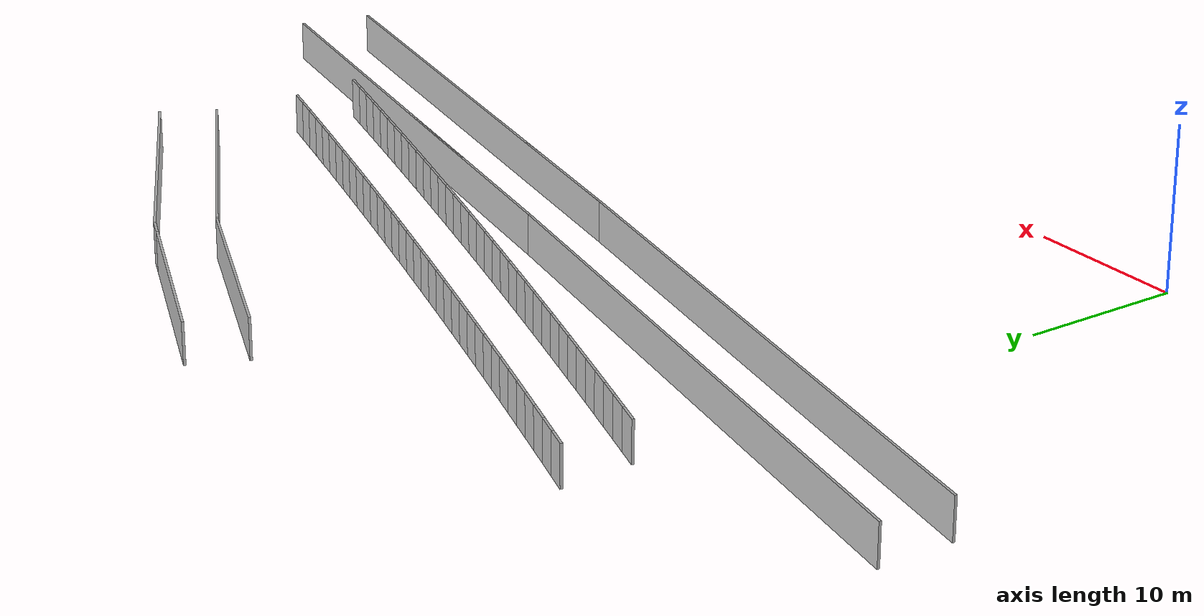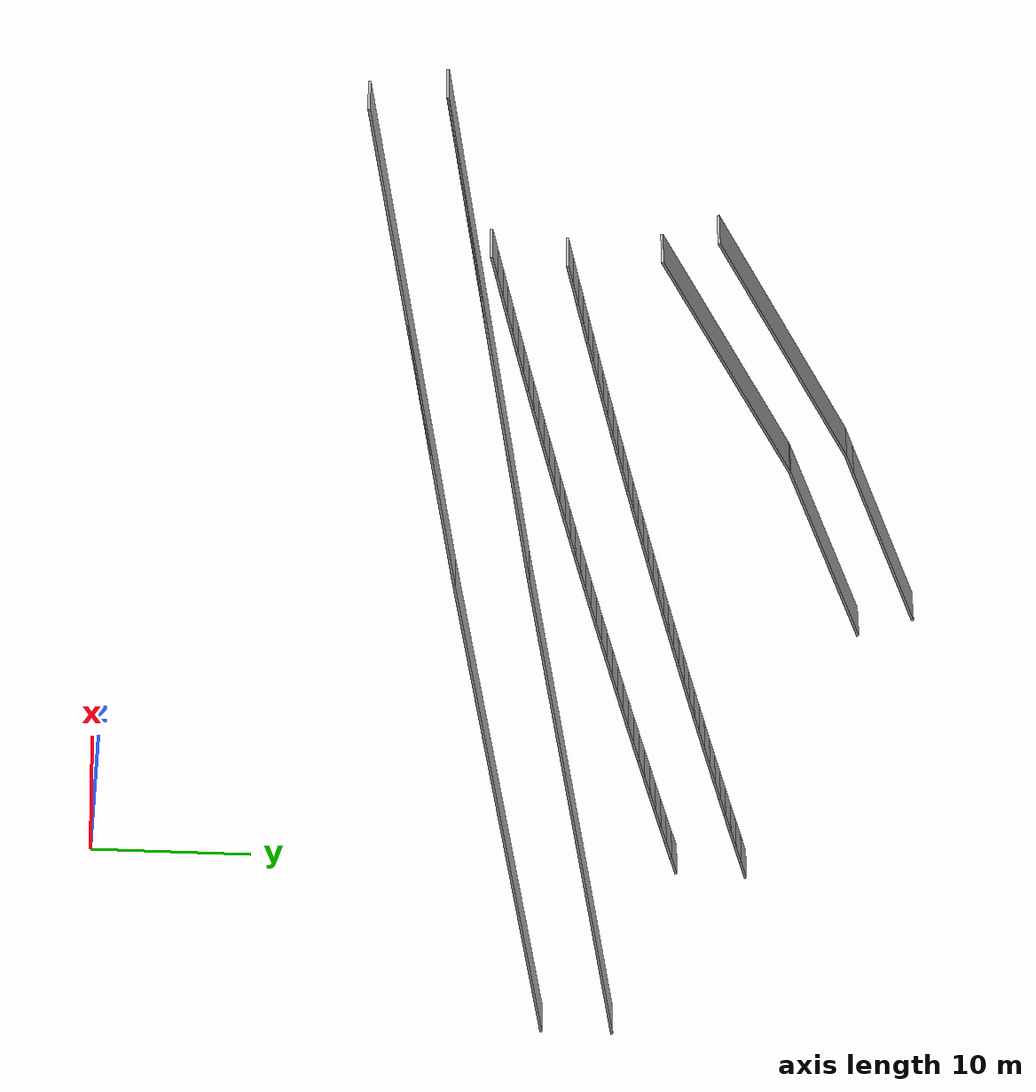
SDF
<?xml version="1.0" ?>
<sdf version="1.6">
  <model name="sps_1704">
    <pose frame="">0 0 0 0 -0 0</pose>
    <static>1</static>
    <self_collide>0</self_collide>
    <allow_auto_disable>0</allow_auto_disable>
    <link name="Wall115">
      <kinematic>0</kinematic>
      <gravity>1</gravity>
      <self_collide>0</self_collide>
      <collision name="collision">
        <geometry>
          <box>
            <size>18.2188 0.15 2.5</size>
          </box>
        </geometry>
        <pose frame="">0 0 0 0 -0 0</pose>
      </collision>
      <visual name="visual">
        <geometry>
          <box>
            <size>18.2188 0.15 2.5</size>
          </box>
        </geometry>
        <pose frame="">0 0 0 0 -0 0</pose>
        <cast_shadows>1</cast_shadows>
        <transparency>0.0</transparency>
      </visual>
      <pose frame="">43.8209 39.7331 1.25 0 0 -0.498938</pose>
    </link>
    <link name="Wall116">
      <kinematic>0</kinematic>
      <gravity>1</gravity>
      <self_collide>0</self_collide>
      <collision name="collision">
        <geometry>
          <box>
            <size>10.5897 0.15 2.5</size>
          </box>
        </geometry>
        <pose frame="">0 0 0 0 -0 0</pose>
      </collision>
      <visual name="visual">
        <geometry>
          <box>
            <size>10.5897 0.15 2.5</size>
          </box>
        </geometry>
        <pose frame="">0 0 0 0 -0 0</pose>
        <cast_shadows>1</cast_shadows>
        <transparency>0.0</transparency>
      </visual>
      <pose frame="">29.2566 20.6364 1.25 0 0 -0.176184</pose>
    </link>
    <link name="Wall117">
      <kinematic>0</kinematic>
      <gravity>1</gravity>
      <self_collide>0</self_collide>
      <collision name="collision">
        <geometry>
          <box>
            <size>10.3568 0.15 2.5</size>
          </box>
        </geometry>
        <pose frame="">0 0 0 0 -0 0</pose>
      </collision>
      <visual name="visual">
        <geometry>
          <box>
            <size>10.3568 0.15 2.5</size>
          </box>
        </geometry>
        <pose frame="">0 0 0 0 -0 0</pose>
        <cast_shadows>1</cast_shadows>
        <transparency>0.0</transparency>
      </visual>
      <pose frame="">39.5677 18.8007 1.25 0 0 -0.176184</pose>
    </link>
    <link name="Wall195">
      <kinematic>0</kinematic>
      <gravity>1</gravity>
      <self_collide>0</self_collide>
      <collision name="collision">
        <geometry>
          <box>
            <size>14.2591 0.15 2.5</size>
          </box>
        </geometry>
        <pose frame="">0 0 0 0 -0 0</pose>
      </collision>
      <visual name="visual">
        <geometry>
          <box>
            <size>14.2591 0.15 2.5</size>
          </box>
        </geometry>
        <pose frame="">0 0 0 0 -0 0</pose>
        <cast_shadows>1</cast_shadows>
        <transparency>0.0</transparency>
      </visual>
      <pose frame="">27.7093 43.5599 1.25 0 -0 2.76212</pose>
    </link>
    <link name="Wall283">
      <kinematic>0</kinematic>
      <gravity>1</gravity>
      <self_collide>0</self_collide>
      <collision name="collision">
        <geometry>
          <box>
            <size>41.0751 0.15 2.5</size>
          </box>
        </geometry>
        <pose frame="">0 0 0 0 -0 0</pose>
      </collision>
      <visual name="visual">
        <geometry>
          <box>
            <size>41.0751 0.15 2.5</size>
          </box>
        </geometry>
        <pose frame="">0 0 0 0 -0 0</pose>
        <cast_shadows>1</cast_shadows>
        <transparency>0.0</transparency>
      </visual>
      <pose frame="">4.64434 29.8393 1.25 0 -0 2.95339</pose>
    </link>
    <link name="Wall285">
      <kinematic>0</kinematic>
      <gravity>1</gravity>
      <self_collide>0</self_collide>
      <collision name="collision">
        <geometry>
          <box>
            <size>9.80231 0.15 2.5</size>
          </box>
        </geometry>
        <pose frame="">0 0 0 0 -0 0</pose>
      </collision>
      <visual name="visual">
        <geometry>
          <box>
            <size>9.80231 0.15 2.5</size>
          </box>
        </geometry>
        <pose frame="">0 0 0 0 -0 0</pose>
        <cast_shadows>1</cast_shadows>
        <transparency>0.0</transparency>
      </visual>
      <pose frame="">29.6443 25.1368 1.25 0 0 -0.176394</pose>
    </link>
    <link name="Wall286">
      <kinematic>0</kinematic>
      <gravity>1</gravity>
      <self_collide>0</self_collide>
      <collision name="collision">
        <geometry>
          <box>
            <size>27.6822 0.15 2.5</size>
          </box>
        </geometry>
        <pose frame="">0 0 0 0 -0 0</pose>
      </collision>
      <visual name="visual">
        <geometry>
          <box>
            <size>27.6822 0.15 2.5</size>
          </box>
        </geometry>
        <pose frame="">0 0 0 0 -0 0</pose>
        <cast_shadows>1</cast_shadows>
        <transparency>0.0</transparency>
      </visual>
      <pose frame="">48.0958 21.8479 1.25 0 0 -0.176394</pose>
    </link>
    <link name="Wall352">
      <kinematic>0</kinematic>
      <gravity>1</gravity>
      <self_collide>0</self_collide>
      <collision name="collision">
        <geometry>
          <box>
            <size>40.2857 0.15 2.5</size>
          </box>
        </geometry>
        <pose frame="">0 0 0 0 -0 0</pose>
      </collision>
      <visual name="visual">
        <geometry>
          <box>
            <size>40.2857 0.15 2.5</size>
          </box>
        </geometry>
        <pose frame="">0 0 0 0 -0 0</pose>
        <cast_shadows>1</cast_shadows>
        <transparency>0.0</transparency>
      </visual>
      <pose frame="">4.25655 25.3333 1.25 0 -0 2.95338</pose>
    </link>
    <link name="Wall433">
      <kinematic>0</kinematic>
      <gravity>1</gravity>
      <self_collide>0</self_collide>
      <collision name="collision">
        <geometry>
          <box>
            <size>12.8028 0.15 2.5</size>
          </box>
        </geometry>
        <pose frame="">0 0 0 0 -0 0</pose>
      </collision>
      <visual name="visual">
        <geometry>
          <box>
            <size>12.8028 0.15 2.5</size>
          </box>
        </geometry>
        <pose frame="">0 0 0 0 -0 0</pose>
        <cast_shadows>1</cast_shadows>
        <transparency>0.0</transparency>
      </visual>
      <pose frame="">28.5235 47.0026 1.25 0 0 -0.379479</pose>
    </link>
    <link name="Wall434">
      <kinematic>0</kinematic>
      <gravity>1</gravity>
      <self_collide>0</self_collide>
      <collision name="collision">
        <geometry>
          <box>
            <size>1.4562 0.15 2.5</size>
          </box>
        </geometry>
        <pose frame="">0 0 0 0 -0 0</pose>
      </collision>
      <visual name="visual">
        <geometry>
          <box>
            <size>1.4562 0.15 2.5</size>
          </box>
        </geometry>
        <pose frame="">0 0 0 0 -0 0</pose>
        <cast_shadows>1</cast_shadows>
        <transparency>0.0</transparency>
      </visual>
      <pose frame="">35.1457 44.3616 1.25 0 0 -0.379479</pose>
    </link>
    <link name="Wall612">
      <kinematic>0</kinematic>
      <gravity>1</gravity>
      <self_collide>0</self_collide>
      <collision name="collision">
        <geometry>
          <box>
            <size>17.9531 0.15 2.5</size>
          </box>
        </geometry>
        <pose frame="">0 0 0 0 -0 0</pose>
      </collision>
      <visual name="visual">
        <geometry>
          <box>
            <size>17.9531 0.15 2.5</size>
          </box>
        </geometry>
        <pose frame="">0 0 0 0 -0 0</pose>
        <cast_shadows>1</cast_shadows>
        <transparency>0.0</transparency>
      </visual>
      <pose frame="">42.3516 36.5486 1.25 0 -0 2.64265</pose>
    </link>
    <link name="Wall613">
      <kinematic>0</kinematic>
      <gravity>1</gravity>
      <self_collide>0</self_collide>
      <collision name="collision">
        <geometry>
          <box>
            <size>0.156951 0.15 2.5</size>
          </box>
        </geometry>
        <pose frame="">0 0 0 0 -0 0</pose>
      </collision>
      <visual name="visual">
        <geometry>
          <box>
            <size>0.156951 0.15 2.5</size>
          </box>
        </geometry>
        <pose frame="">0 0 0 0 -0 0</pose>
        <cast_shadows>1</cast_shadows>
        <transparency>0.0</transparency>
      </visual>
      <pose frame="">34.4005 40.8813 1.25 0 -0 2.64265</pose>
    </link>
    <link name="Wall988">
      <kinematic>0</kinematic>
      <gravity>1</gravity>
      <self_collide>0</self_collide>
      <collision name="collision">
        <geometry>
          <box>
            <size>37.2045 0.15 2.5</size>
          </box>
        </geometry>
        <pose frame="">0 0 0 0 -0 0</pose>
      </collision>
      <visual name="visual">
        <geometry>
          <box>
            <size>37.2045 0.15 2.5</size>
          </box>
        </geometry>
        <pose frame="">0 0 0 0 -0 0</pose>
        <cast_shadows>1</cast_shadows>
        <transparency>0.0</transparency>
      </visual>
      <pose frame="">42.358 18.304 1.25 0 -0 2.96541</pose>
    </link>
    <link name="Wall998">
      <kinematic>0</kinematic>
      <gravity>1</gravity>
      <self_collide>0</self_collide>
      <collision name="collision">
        <geometry>
          <box>
            <size>37.4845 0.15 2.5</size>
          </box>
        </geometry>
        <pose frame="">0 0 0 0 -0 0</pose>
      </collision>
      <visual name="visual">
        <geometry>
          <box>
            <size>37.4845 0.15 2.5</size>
          </box>
        </geometry>
        <pose frame="">0 0 0 0 -0 0</pose>
        <cast_shadows>1</cast_shadows>
        <transparency>0.0</transparency>
      </visual>
      <pose frame="">43.2707 22.708 1.25 0 0 -0.176394</pose>
    </link>
    <link name="Wall8818">
      <kinematic>0</kinematic>
      <gravity>1</gravity>
      <self_collide>0</self_collide>
      <collision name="collision">
        <geometry>
          <box>
            <size>1.49898 0.15 2.5</size>
          </box>
        </geometry>
        <pose frame="">0 0 0 0 -0 0</pose>
      </collision>
      <visual name="visual">
        <geometry>
          <box>
            <size>1.49898 0.15 2.5</size>
          </box>
        </geometry>
        <pose frame="">0 0 0 0 -0 0</pose>
        <cast_shadows>1</cast_shadows>
        <transparency>0.0</transparency>
      </visual>
      <pose frame="">0.359367 36.5145 1.25 0 0 -0.302397</pose>
    </link>
    <link name="Wall8819">
      <kinematic>0</kinematic>
      <gravity>1</gravity>
      <self_collide>0</self_collide>
      <collision name="collision">
        <geometry>
          <box>
            <size>1.49897 0.15 2.5</size>
          </box>
        </geometry>
        <pose frame="">0 0 0 0 -0 0</pose>
      </collision>
      <visual name="visual">
        <geometry>
          <box>
            <size>1.49897 0.15 2.5</size>
          </box>
        </geometry>
        <pose frame="">0 0 0 0 -0 0</pose>
        <cast_shadows>1</cast_shadows>
        <transparency>0.0</transparency>
      </visual>
      <pose frame="">1.79064 36.0691 1.25 0 0 -0.300993</pose>
    </link>
    <link name="Wall8820">
      <kinematic>0</kinematic>
      <gravity>1</gravity>
      <self_collide>0</self_collide>
      <collision name="collision">
        <geometry>
          <box>
            <size>1.49889 0.15 2.5</size>
          </box>
        </geometry>
        <pose frame="">0 0 0 0 -0 0</pose>
      </collision>
      <visual name="visual">
        <geometry>
          <box>
            <size>1.49889 0.15 2.5</size>
          </box>
        </geometry>
        <pose frame="">0 0 0 0 -0 0</pose>
        <cast_shadows>1</cast_shadows>
        <transparency>0.0</transparency>
      </visual>
      <pose frame="">3.22256 35.6259 1.25 0 0 -0.299304</pose>
    </link>
    <link name="Wall8821">
      <kinematic>0</kinematic>
      <gravity>1</gravity>
      <self_collide>0</self_collide>
      <collision name="collision">
        <geometry>
          <box>
            <size>1.49891 0.15 2.5</size>
          </box>
        </geometry>
        <pose frame="">0 0 0 0 -0 0</pose>
      </collision>
      <visual name="visual">
        <geometry>
          <box>
            <size>1.49891 0.15 2.5</size>
          </box>
        </geometry>
        <pose frame="">0 0 0 0 -0 0</pose>
        <cast_shadows>1</cast_shadows>
        <transparency>0.0</transparency>
      </visual>
      <pose frame="">4.65517 35.1851 1.25 0 0 -0.297682</pose>
    </link>
    <link name="Wall8822">
      <kinematic>0</kinematic>
      <gravity>1</gravity>
      <self_collide>0</self_collide>
      <collision name="collision">
        <geometry>
          <box>
            <size>1.49883 0.15 2.5</size>
          </box>
        </geometry>
        <pose frame="">0 0 0 0 -0 0</pose>
      </collision>
      <visual name="visual">
        <geometry>
          <box>
            <size>1.49883 0.15 2.5</size>
          </box>
        </geometry>
        <pose frame="">0 0 0 0 -0 0</pose>
        <cast_shadows>1</cast_shadows>
        <transparency>0.0</transparency>
      </visual>
      <pose frame="">6.08846 34.7466 1.25 0 0 -0.296122</pose>
    </link>
    <link name="Wall8823">
      <kinematic>0</kinematic>
      <gravity>1</gravity>
      <self_collide>0</self_collide>
      <collision name="collision">
        <geometry>
          <box>
            <size>1.49897 0.15 2.5</size>
          </box>
        </geometry>
        <pose frame="">0 0 0 0 -0 0</pose>
      </collision>
      <visual name="visual">
        <geometry>
          <box>
            <size>1.49897 0.15 2.5</size>
          </box>
        </geometry>
        <pose frame="">0 0 0 0 -0 0</pose>
        <cast_shadows>1</cast_shadows>
        <transparency>0.0</transparency>
      </visual>
      <pose frame="">7.52245 34.3103 1.25 0 0 -0.294604</pose>
    </link>
    <link name="Wall8824">
      <kinematic>0</kinematic>
      <gravity>1</gravity>
      <self_collide>0</self_collide>
      <collision name="collision">
        <geometry>
          <box>
            <size>1.49907 0.15 2.5</size>
          </box>
        </geometry>
        <pose frame="">0 0 0 0 -0 0</pose>
      </collision>
      <visual name="visual">
        <geometry>
          <box>
            <size>1.49907 0.15 2.5</size>
          </box>
        </geometry>
        <pose frame="">0 0 0 0 -0 0</pose>
        <cast_shadows>1</cast_shadows>
        <transparency>0.0</transparency>
      </visual>
      <pose frame="">8.95724 33.8762 1.25 0 0 -0.293009</pose>
    </link>
    <link name="Wall8825">
      <kinematic>0</kinematic>
      <gravity>1</gravity>
      <self_collide>0</self_collide>
      <collision name="collision">
        <geometry>
          <box>
            <size>1.4988 0.15 2.5</size>
          </box>
        </geometry>
        <pose frame="">0 0 0 0 -0 0</pose>
      </collision>
      <visual name="visual">
        <geometry>
          <box>
            <size>1.4988 0.15 2.5</size>
          </box>
        </geometry>
        <pose frame="">0 0 0 0 -0 0</pose>
        <cast_shadows>1</cast_shadows>
        <transparency>0.0</transparency>
      </visual>
      <pose frame="">10.3926 33.4444 1.25 0 0 -0.291406</pose>
    </link>
    <link name="Wall8826">
      <kinematic>0</kinematic>
      <gravity>1</gravity>
      <self_collide>0</self_collide>
      <collision name="collision">
        <geometry>
          <box>
            <size>1.49893 0.15 2.5</size>
          </box>
        </geometry>
        <pose frame="">0 0 0 0 -0 0</pose>
      </collision>
      <visual name="visual">
        <geometry>
          <box>
            <size>1.49893 0.15 2.5</size>
          </box>
        </geometry>
        <pose frame="">0 0 0 0 -0 0</pose>
        <cast_shadows>1</cast_shadows>
        <transparency>0.0</transparency>
      </visual>
      <pose frame="">11.8286 33.0149 1.25 0 0 -0.28985</pose>
    </link>
    <link name="Wall8827">
      <kinematic>0</kinematic>
      <gravity>1</gravity>
      <self_collide>0</self_collide>
      <collision name="collision">
        <geometry>
          <box>
            <size>1.49906 0.15 2.5</size>
          </box>
        </geometry>
        <pose frame="">0 0 0 0 -0 0</pose>
      </collision>
      <visual name="visual">
        <geometry>
          <box>
            <size>1.49906 0.15 2.5</size>
          </box>
        </geometry>
        <pose frame="">0 0 0 0 -0 0</pose>
        <cast_shadows>1</cast_shadows>
        <transparency>0.0</transparency>
      </visual>
      <pose frame="">13.2654 32.5876 1.25 0 0 -0.288294</pose>
    </link>
    <link name="Wall8828">
      <kinematic>0</kinematic>
      <gravity>1</gravity>
      <self_collide>0</self_collide>
      <collision name="collision">
        <geometry>
          <box>
            <size>1.4989 0.15 2.5</size>
          </box>
        </geometry>
        <pose frame="">0 0 0 0 -0 0</pose>
      </collision>
      <visual name="visual">
        <geometry>
          <box>
            <size>1.4989 0.15 2.5</size>
          </box>
        </geometry>
        <pose frame="">0 0 0 0 -0 0</pose>
        <cast_shadows>1</cast_shadows>
        <transparency>0.0</transparency>
      </visual>
      <pose frame="">14.7029 32.1627 1.25 0 0 -0.2865</pose>
    </link>
    <link name="Wall8829">
      <kinematic>0</kinematic>
      <gravity>1</gravity>
      <self_collide>0</self_collide>
      <collision name="collision">
        <geometry>
          <box>
            <size>1.49892 0.15 2.5</size>
          </box>
        </geometry>
        <pose frame="">0 0 0 0 -0 0</pose>
      </collision>
      <visual name="visual">
        <geometry>
          <box>
            <size>1.49892 0.15 2.5</size>
          </box>
        </geometry>
        <pose frame="">0 0 0 0 -0 0</pose>
        <cast_shadows>1</cast_shadows>
        <transparency>0.0</transparency>
      </visual>
      <pose frame="">16.141 31.7401 1.25 0 0 -0.285096</pose>
    </link>
    <link name="Wall8830">
      <kinematic>0</kinematic>
      <gravity>1</gravity>
      <self_collide>0</self_collide>
      <collision name="collision">
        <geometry>
          <box>
            <size>1.49896 0.15 2.5</size>
          </box>
        </geometry>
        <pose frame="">0 0 0 0 -0 0</pose>
      </collision>
      <visual name="visual">
        <geometry>
          <box>
            <size>1.49896 0.15 2.5</size>
          </box>
        </geometry>
        <pose frame="">0 0 0 0 -0 0</pose>
        <cast_shadows>1</cast_shadows>
        <transparency>0.0</transparency>
      </visual>
      <pose frame="">17.5799 31.3198 1.25 0 0 -0.283305</pose>
    </link>
    <link name="Wall8831">
      <kinematic>0</kinematic>
      <gravity>1</gravity>
      <self_collide>0</self_collide>
      <collision name="collision">
        <geometry>
          <box>
            <size>1.49905 0.15 2.5</size>
          </box>
        </geometry>
        <pose frame="">0 0 0 0 -0 0</pose>
      </collision>
      <visual name="visual">
        <geometry>
          <box>
            <size>1.49905 0.15 2.5</size>
          </box>
        </geometry>
        <pose frame="">0 0 0 0 -0 0</pose>
        <cast_shadows>1</cast_shadows>
        <transparency>0.0</transparency>
      </visual>
      <pose frame="">19.0194 30.9017 1.25 0 0 -0.282058</pose>
    </link>
    <link name="Wall8832">
      <kinematic>0</kinematic>
      <gravity>1</gravity>
      <self_collide>0</self_collide>
      <collision name="collision">
        <geometry>
          <box>
            <size>1.49891 0.15 2.5</size>
          </box>
        </geometry>
        <pose frame="">0 0 0 0 -0 0</pose>
      </collision>
      <visual name="visual">
        <geometry>
          <box>
            <size>1.49891 0.15 2.5</size>
          </box>
        </geometry>
        <pose frame="">0 0 0 0 -0 0</pose>
        <cast_shadows>1</cast_shadows>
        <transparency>0.0</transparency>
      </visual>
      <pose frame="">20.4595 30.4857 1.25 0 0 -0.280392</pose>
    </link>
    <link name="Wall8833">
      <kinematic>0</kinematic>
      <gravity>1</gravity>
      <self_collide>0</self_collide>
      <collision name="collision">
        <geometry>
          <box>
            <size>1.49882 0.15 2.5</size>
          </box>
        </geometry>
        <pose frame="">0 0 0 0 -0 0</pose>
      </collision>
      <visual name="visual">
        <geometry>
          <box>
            <size>1.49882 0.15 2.5</size>
          </box>
        </geometry>
        <pose frame="">0 0 0 0 -0 0</pose>
        <cast_shadows>1</cast_shadows>
        <transparency>0.0</transparency>
      </visual>
      <pose frame="">21.9001 30.0721 1.25 0 0 -0.278714</pose>
    </link>
    <link name="Wall8834">
      <kinematic>0</kinematic>
      <gravity>1</gravity>
      <self_collide>0</self_collide>
      <collision name="collision">
        <geometry>
          <box>
            <size>1.49905 0.15 2.5</size>
          </box>
        </geometry>
        <pose frame="">0 0 0 0 -0 0</pose>
      </collision>
      <visual name="visual">
        <geometry>
          <box>
            <size>1.49905 0.15 2.5</size>
          </box>
        </geometry>
        <pose frame="">0 0 0 0 -0 0</pose>
        <cast_shadows>1</cast_shadows>
        <transparency>0.0</transparency>
      </visual>
      <pose frame="">23.3415 29.6608 1.25 0 0 -0.277187</pose>
    </link>
    <link name="Wall8835">
      <kinematic>0</kinematic>
      <gravity>1</gravity>
      <self_collide>0</self_collide>
      <collision name="collision">
        <geometry>
          <box>
            <size>1.49893 0.15 2.5</size>
          </box>
        </geometry>
        <pose frame="">0 0 0 0 -0 0</pose>
      </collision>
      <visual name="visual">
        <geometry>
          <box>
            <size>1.49893 0.15 2.5</size>
          </box>
        </geometry>
        <pose frame="">0 0 0 0 -0 0</pose>
        <cast_shadows>1</cast_shadows>
        <transparency>0.0</transparency>
      </visual>
      <pose frame="">24.7837 29.2518 1.25 0 0 -0.275559</pose>
    </link>
    <link name="Wall8836">
      <kinematic>0</kinematic>
      <gravity>1</gravity>
      <self_collide>0</self_collide>
      <collision name="collision">
        <geometry>
          <box>
            <size>1.49891 0.15 2.5</size>
          </box>
        </geometry>
        <pose frame="">0 0 0 0 -0 0</pose>
      </collision>
      <visual name="visual">
        <geometry>
          <box>
            <size>1.49891 0.15 2.5</size>
          </box>
        </geometry>
        <pose frame="">0 0 0 0 -0 0</pose>
        <cast_shadows>1</cast_shadows>
        <transparency>0.0</transparency>
      </visual>
      <pose frame="">26.2263 28.8451 1.25 0 0 -0.273998</pose>
    </link>
    <link name="Wall8837">
      <kinematic>0</kinematic>
      <gravity>1</gravity>
      <self_collide>0</self_collide>
      <collision name="collision">
        <geometry>
          <box>
            <size>1.4989 0.15 2.5</size>
          </box>
        </geometry>
        <pose frame="">0 0 0 0 -0 0</pose>
      </collision>
      <visual name="visual">
        <geometry>
          <box>
            <size>1.4989 0.15 2.5</size>
          </box>
        </geometry>
        <pose frame="">0 0 0 0 -0 0</pose>
        <cast_shadows>1</cast_shadows>
        <transparency>0.0</transparency>
      </visual>
      <pose frame="">27.6696 28.4406 1.25 0 0 -0.272477</pose>
    </link>
    <link name="Wall8838">
      <kinematic>0</kinematic>
      <gravity>1</gravity>
      <self_collide>0</self_collide>
      <collision name="collision">
        <geometry>
          <box>
            <size>1.49903 0.15 2.5</size>
          </box>
        </geometry>
        <pose frame="">0 0 0 0 -0 0</pose>
      </collision>
      <visual name="visual">
        <geometry>
          <box>
            <size>1.49903 0.15 2.5</size>
          </box>
        </geometry>
        <pose frame="">0 0 0 0 -0 0</pose>
        <cast_shadows>1</cast_shadows>
        <transparency>0.0</transparency>
      </visual>
      <pose frame="">29.1136 28.0384 1.25 0 0 -0.270805</pose>
    </link>
    <link name="Wall8839">
      <kinematic>0</kinematic>
      <gravity>1</gravity>
      <self_collide>0</self_collide>
      <collision name="collision">
        <geometry>
          <box>
            <size>1.49903 0.15 2.5</size>
          </box>
        </geometry>
        <pose frame="">0 0 0 0 -0 0</pose>
      </collision>
      <visual name="visual">
        <geometry>
          <box>
            <size>1.49903 0.15 2.5</size>
          </box>
        </geometry>
        <pose frame="">0 0 0 0 -0 0</pose>
        <cast_shadows>1</cast_shadows>
        <transparency>0.0</transparency>
      </visual>
      <pose frame="">30.5583 27.6385 1.25 0 0 -0.269284</pose>
    </link>
    <link name="Wall8840">
      <kinematic>0</kinematic>
      <gravity>1</gravity>
      <self_collide>0</self_collide>
      <collision name="collision">
        <geometry>
          <box>
            <size>1.49886 0.15 2.5</size>
          </box>
        </geometry>
        <pose frame="">0 0 0 0 -0 0</pose>
      </collision>
      <visual name="visual">
        <geometry>
          <box>
            <size>1.49886 0.15 2.5</size>
          </box>
        </geometry>
        <pose frame="">0 0 0 0 -0 0</pose>
        <cast_shadows>1</cast_shadows>
        <transparency>0.0</transparency>
      </visual>
      <pose frame="">32.0036 27.2408 1.25 0 0 -0.267795</pose>
    </link>
    <link name="Wall8841">
      <kinematic>0</kinematic>
      <gravity>1</gravity>
      <self_collide>0</self_collide>
      <collision name="collision">
        <geometry>
          <box>
            <size>1.49894 0.15 2.5</size>
          </box>
        </geometry>
        <pose frame="">0 0 0 0 -0 0</pose>
      </collision>
      <visual name="visual">
        <geometry>
          <box>
            <size>1.49894 0.15 2.5</size>
          </box>
        </geometry>
        <pose frame="">0 0 0 0 -0 0</pose>
        <cast_shadows>1</cast_shadows>
        <transparency>0.0</transparency>
      </visual>
      <pose frame="">33.4494 26.8454 1.25 0 0 -0.266134</pose>
    </link>
    <link name="Wall8842">
      <kinematic>0</kinematic>
      <gravity>1</gravity>
      <self_collide>0</self_collide>
      <collision name="collision">
        <geometry>
          <box>
            <size>1.49899 0.15 2.5</size>
          </box>
        </geometry>
        <pose frame="">0 0 0 0 -0 0</pose>
      </collision>
      <visual name="visual">
        <geometry>
          <box>
            <size>1.49899 0.15 2.5</size>
          </box>
        </geometry>
        <pose frame="">0 0 0 0 -0 0</pose>
        <cast_shadows>1</cast_shadows>
        <transparency>0.0</transparency>
      </visual>
      <pose frame="">34.8959 26.4523 1.25 0 0 -0.264563</pose>
    </link>
    <link name="Wall8843">
      <kinematic>0</kinematic>
      <gravity>1</gravity>
      <self_collide>0</self_collide>
      <collision name="collision">
        <geometry>
          <box>
            <size>1.4989 0.15 2.5</size>
          </box>
        </geometry>
        <pose frame="">0 0 0 0 -0 0</pose>
      </collision>
      <visual name="visual">
        <geometry>
          <box>
            <size>1.4989 0.15 2.5</size>
          </box>
        </geometry>
        <pose frame="">0 0 0 0 -0 0</pose>
        <cast_shadows>1</cast_shadows>
        <transparency>0.0</transparency>
      </visual>
      <pose frame="">36.343 26.0615 1.25 0 0 -0.262934</pose>
    </link>
    <link name="Wall8844">
      <kinematic>0</kinematic>
      <gravity>1</gravity>
      <self_collide>0</self_collide>
      <collision name="collision">
        <geometry>
          <box>
            <size>1.49888 0.15 2.5</size>
          </box>
        </geometry>
        <pose frame="">0 0 0 0 -0 0</pose>
      </collision>
      <visual name="visual">
        <geometry>
          <box>
            <size>1.49888 0.15 2.5</size>
          </box>
        </geometry>
        <pose frame="">0 0 0 0 -0 0</pose>
        <cast_shadows>1</cast_shadows>
        <transparency>0.0</transparency>
      </visual>
      <pose frame="">37.7907 25.6731 1.25 0 0 -0.261295</pose>
    </link>
    <link name="Wall8845">
      <kinematic>0</kinematic>
      <gravity>1</gravity>
      <self_collide>0</self_collide>
      <collision name="collision">
        <geometry>
          <box>
            <size>1.4989 0.15 2.5</size>
          </box>
        </geometry>
        <pose frame="">0 0 0 0 -0 0</pose>
      </collision>
      <visual name="visual">
        <geometry>
          <box>
            <size>1.4989 0.15 2.5</size>
          </box>
        </geometry>
        <pose frame="">0 0 0 0 -0 0</pose>
        <cast_shadows>1</cast_shadows>
        <transparency>0.0</transparency>
      </visual>
      <pose frame="">39.239 25.287 1.25 0 0 -0.259774</pose>
    </link>
    <link name="Wall8846">
      <kinematic>0</kinematic>
      <gravity>1</gravity>
      <self_collide>0</self_collide>
      <collision name="collision">
        <geometry>
          <box>
            <size>1.49887 0.15 2.5</size>
          </box>
        </geometry>
        <pose frame="">0 0 0 0 -0 0</pose>
      </collision>
      <visual name="visual">
        <geometry>
          <box>
            <size>1.49887 0.15 2.5</size>
          </box>
        </geometry>
        <pose frame="">0 0 0 0 -0 0</pose>
        <cast_shadows>1</cast_shadows>
        <transparency>0.0</transparency>
      </visual>
      <pose frame="">40.6879 24.9031 1.25 0 0 -0.258263</pose>
    </link>
    <link name="Wall8847">
      <kinematic>0</kinematic>
      <gravity>1</gravity>
      <self_collide>0</self_collide>
      <collision name="collision">
        <geometry>
          <box>
            <size>1.49913 0.15 2.5</size>
          </box>
        </geometry>
        <pose frame="">0 0 0 0 -0 0</pose>
      </collision>
      <visual name="visual">
        <geometry>
          <box>
            <size>1.49913 0.15 2.5</size>
          </box>
        </geometry>
        <pose frame="">0 0 0 0 -0 0</pose>
        <cast_shadows>1</cast_shadows>
        <transparency>0.0</transparency>
      </visual>
      <pose frame="">42.1374 24.5214 1.25 0 0 -0.2567</pose>
    </link>
    <link name="Wall8848">
      <kinematic>0</kinematic>
      <gravity>1</gravity>
      <self_collide>0</self_collide>
      <collision name="collision">
        <geometry>
          <box>
            <size>1.49882 0.15 2.5</size>
          </box>
        </geometry>
        <pose frame="">0 0 0 0 -0 0</pose>
      </collision>
      <visual name="visual">
        <geometry>
          <box>
            <size>1.49882 0.15 2.5</size>
          </box>
        </geometry>
        <pose frame="">0 0 0 0 -0 0</pose>
        <cast_shadows>1</cast_shadows>
        <transparency>0.0</transparency>
      </visual>
      <pose frame="">43.5876 24.1421 1.25 0 0 -0.254944</pose>
    </link>
    <link name="Wall8849">
      <kinematic>0</kinematic>
      <gravity>1</gravity>
      <self_collide>0</self_collide>
      <collision name="collision">
        <geometry>
          <box>
            <size>1.49897 0.15 2.5</size>
          </box>
        </geometry>
        <pose frame="">0 0 0 0 -0 0</pose>
      </collision>
      <visual name="visual">
        <geometry>
          <box>
            <size>1.49897 0.15 2.5</size>
          </box>
        </geometry>
        <pose frame="">0 0 0 0 -0 0</pose>
        <cast_shadows>1</cast_shadows>
        <transparency>0.0</transparency>
      </visual>
      <pose frame="">45.0384 23.7651 1.25 0 0 -0.253531</pose>
    </link>
    <link name="Wall8850">
      <kinematic>0</kinematic>
      <gravity>1</gravity>
      <self_collide>0</self_collide>
      <collision name="collision">
        <geometry>
          <box>
            <size>1.49908 0.15 2.5</size>
          </box>
        </geometry>
        <pose frame="">0 0 0 0 -0 0</pose>
      </collision>
      <visual name="visual">
        <geometry>
          <box>
            <size>1.49908 0.15 2.5</size>
          </box>
        </geometry>
        <pose frame="">0 0 0 0 -0 0</pose>
        <cast_shadows>1</cast_shadows>
        <transparency>0.0</transparency>
      </visual>
      <pose frame="">46.4898 23.3903 1.25 0 0 -0.251871</pose>
    </link>
    <link name="Wall8851">
      <kinematic>0</kinematic>
      <gravity>1</gravity>
      <self_collide>0</self_collide>
      <collision name="collision">
        <geometry>
          <box>
            <size>1.49895 0.15 2.5</size>
          </box>
        </geometry>
        <pose frame="">0 0 0 0 -0 0</pose>
      </collision>
      <visual name="visual">
        <geometry>
          <box>
            <size>1.49895 0.15 2.5</size>
          </box>
        </geometry>
        <pose frame="">0 0 0 0 -0 0</pose>
        <cast_shadows>1</cast_shadows>
        <transparency>0.0</transparency>
      </visual>
      <pose frame="">47.9418 23.0178 1.25 0 0 -0.250381</pose>
    </link>
    <link name="Wall8852">
      <kinematic>0</kinematic>
      <gravity>1</gravity>
      <self_collide>0</self_collide>
      <collision name="collision">
        <geometry>
          <box>
            <size>1.49889 0.15 2.5</size>
          </box>
        </geometry>
        <pose frame="">0 0 0 0 -0 0</pose>
      </collision>
      <visual name="visual">
        <geometry>
          <box>
            <size>1.49889 0.15 2.5</size>
          </box>
        </geometry>
        <pose frame="">0 0 0 0 -0 0</pose>
        <cast_shadows>1</cast_shadows>
        <transparency>0.0</transparency>
      </visual>
      <pose frame="">49.3942 22.6476 1.25 0 0 -0.248751</pose>
    </link>
    <link name="Wall9898">
      <kinematic>0</kinematic>
      <gravity>1</gravity>
      <self_collide>0</self_collide>
      <collision name="collision">
        <geometry>
          <box>
            <size>1.4924 0.15 2.5</size>
          </box>
        </geometry>
        <pose frame="">0 0 0 0 -0 0</pose>
      </collision>
      <visual name="visual">
        <geometry>
          <box>
            <size>1.4924 0.15 2.5</size>
          </box>
        </geometry>
        <pose frame="">0 0 0 0 -0 0</pose>
        <cast_shadows>1</cast_shadows>
        <transparency>0.0</transparency>
      </visual>
      <pose frame="">0.168052 40.9123 1.25 0 0 -0.304032</pose>
    </link>
    <link name="Wall9899">
      <kinematic>0</kinematic>
      <gravity>1</gravity>
      <self_collide>0</self_collide>
      <collision name="collision">
        <geometry>
          <box>
            <size>1.4924 0.15 2.5</size>
          </box>
        </geometry>
        <pose frame="">0 0 0 0 -0 0</pose>
      </collision>
      <visual name="visual">
        <geometry>
          <box>
            <size>1.4924 0.15 2.5</size>
          </box>
        </geometry>
        <pose frame="">0 0 0 0 -0 0</pose>
        <cast_shadows>1</cast_shadows>
        <transparency>0.0</transparency>
      </visual>
      <pose frame="">1.59234 40.4666 1.25 0 0 -0.302531</pose>
    </link>
    <link name="Wall9900">
      <kinematic>0</kinematic>
      <gravity>1</gravity>
      <self_collide>0</self_collide>
      <collision name="collision">
        <geometry>
          <box>
            <size>1.49248 0.15 2.5</size>
          </box>
        </geometry>
        <pose frame="">0 0 0 0 -0 0</pose>
      </collision>
      <visual name="visual">
        <geometry>
          <box>
            <size>1.49248 0.15 2.5</size>
          </box>
        </geometry>
        <pose frame="">0 0 0 0 -0 0</pose>
        <cast_shadows>1</cast_shadows>
        <transparency>0.0</transparency>
      </visual>
      <pose frame="">3.01736 40.0231 1.25 0 0 -0.300928</pose>
    </link>
    <link name="Wall9901">
      <kinematic>0</kinematic>
      <gravity>1</gravity>
      <self_collide>0</self_collide>
      <collision name="collision">
        <geometry>
          <box>
            <size>1.49231 0.15 2.5</size>
          </box>
        </geometry>
        <pose frame="">0 0 0 0 -0 0</pose>
      </collision>
      <visual name="visual">
        <geometry>
          <box>
            <size>1.49231 0.15 2.5</size>
          </box>
        </geometry>
        <pose frame="">0 0 0 0 -0 0</pose>
        <cast_shadows>1</cast_shadows>
        <transparency>0.0</transparency>
      </visual>
      <pose frame="">4.44305 39.5819 1.25 0 0 -0.299296</pose>
    </link>
    <link name="Wall9902">
      <kinematic>0</kinematic>
      <gravity>1</gravity>
      <self_collide>0</self_collide>
      <collision name="collision">
        <geometry>
          <box>
            <size>1.4926 0.15 2.5</size>
          </box>
        </geometry>
        <pose frame="">0 0 0 0 -0 0</pose>
      </collision>
      <visual name="visual">
        <geometry>
          <box>
            <size>1.4926 0.15 2.5</size>
          </box>
        </geometry>
        <pose frame="">0 0 0 0 -0 0</pose>
        <cast_shadows>1</cast_shadows>
        <transparency>0.0</transparency>
      </visual>
      <pose frame="">5.86953 39.1431 1.25 0 0 -0.297567</pose>
    </link>
    <link name="Wall9903">
      <kinematic>0</kinematic>
      <gravity>1</gravity>
      <self_collide>0</self_collide>
      <collision name="collision">
        <geometry>
          <box>
            <size>1.4924 0.15 2.5</size>
          </box>
        </geometry>
        <pose frame="">0 0 0 0 -0 0</pose>
      </collision>
      <visual name="visual">
        <geometry>
          <box>
            <size>1.4924 0.15 2.5</size>
          </box>
        </geometry>
        <pose frame="">0 0 0 0 -0 0</pose>
        <cast_shadows>1</cast_shadows>
        <transparency>0.0</transparency>
      </visual>
      <pose frame="">7.29674 38.7065 1.25 0 0 -0.296154</pose>
    </link>
    <link name="Wall9904">
      <kinematic>0</kinematic>
      <gravity>1</gravity>
      <self_collide>0</self_collide>
      <collision name="collision">
        <geometry>
          <box>
            <size>1.4923 0.15 2.5</size>
          </box>
        </geometry>
        <pose frame="">0 0 0 0 -0 0</pose>
      </collision>
      <visual name="visual">
        <geometry>
          <box>
            <size>1.4923 0.15 2.5</size>
          </box>
        </geometry>
        <pose frame="">0 0 0 0 -0 0</pose>
        <cast_shadows>1</cast_shadows>
        <transparency>0.0</transparency>
      </visual>
      <pose frame="">8.72445 38.272 1.25 0 0 -0.294677</pose>
    </link>
    <link name="Wall9905">
      <kinematic>0</kinematic>
      <gravity>1</gravity>
      <self_collide>0</self_collide>
      <collision name="collision">
        <geometry>
          <box>
            <size>1.49243 0.15 2.5</size>
          </box>
        </geometry>
        <pose frame="">0 0 0 0 -0 0</pose>
      </collision>
      <visual name="visual">
        <geometry>
          <box>
            <size>1.49243 0.15 2.5</size>
          </box>
        </geometry>
        <pose frame="">0 0 0 0 -0 0</pose>
        <cast_shadows>1</cast_shadows>
        <transparency>0.0</transparency>
      </visual>
      <pose frame="">10.1529 37.8398 1.25 0 0 -0.292984</pose>
    </link>
    <link name="Wall9906">
      <kinematic>0</kinematic>
      <gravity>1</gravity>
      <self_collide>0</self_collide>
      <collision name="collision">
        <geometry>
          <box>
            <size>1.49243 0.15 2.5</size>
          </box>
        </geometry>
        <pose frame="">0 0 0 0 -0 0</pose>
      </collision>
      <visual name="visual">
        <geometry>
          <box>
            <size>1.49243 0.15 2.5</size>
          </box>
        </geometry>
        <pose frame="">0 0 0 0 -0 0</pose>
        <cast_shadows>1</cast_shadows>
        <transparency>0.0</transparency>
      </visual>
      <pose frame="">11.5821 37.41 1.25 0 0 -0.291277</pose>
    </link>
    <link name="Wall9907">
      <kinematic>0</kinematic>
      <gravity>1</gravity>
      <self_collide>0</self_collide>
      <collision name="collision">
        <geometry>
          <box>
            <size>1.49221 0.15 2.5</size>
          </box>
        </geometry>
        <pose frame="">0 0 0 0 -0 0</pose>
      </collision>
      <visual name="visual">
        <geometry>
          <box>
            <size>1.49221 0.15 2.5</size>
          </box>
        </geometry>
        <pose frame="">0 0 0 0 -0 0</pose>
        <cast_shadows>1</cast_shadows>
        <transparency>0.0</transparency>
      </visual>
      <pose frame="">13.0118 36.9825 1.25 0 0 -0.289784</pose>
    </link>
    <link name="Wall9908">
      <kinematic>0</kinematic>
      <gravity>1</gravity>
      <self_collide>0</self_collide>
      <collision name="collision">
        <geometry>
          <box>
            <size>1.49258 0.15 2.5</size>
          </box>
        </geometry>
        <pose frame="">0 0 0 0 -0 0</pose>
      </collision>
      <visual name="visual">
        <geometry>
          <box>
            <size>1.49258 0.15 2.5</size>
          </box>
        </geometry>
        <pose frame="">0 0 0 0 -0 0</pose>
        <cast_shadows>1</cast_shadows>
        <transparency>0.0</transparency>
      </visual>
      <pose frame="">14.4423 36.5572 1.25 0 0 -0.288175</pose>
    </link>
    <link name="Wall9909">
      <kinematic>0</kinematic>
      <gravity>1</gravity>
      <self_collide>0</self_collide>
      <collision name="collision">
        <geometry>
          <box>
            <size>1.49231 0.15 2.5</size>
          </box>
        </geometry>
        <pose frame="">0 0 0 0 -0 0</pose>
      </collision>
      <visual name="visual">
        <geometry>
          <box>
            <size>1.49231 0.15 2.5</size>
          </box>
        </geometry>
        <pose frame="">0 0 0 0 -0 0</pose>
        <cast_shadows>1</cast_shadows>
        <transparency>0.0</transparency>
      </visual>
      <pose frame="">15.8736 36.1341 1.25 0 0 -0.286693</pose>
    </link>
    <link name="Wall9910">
      <kinematic>0</kinematic>
      <gravity>1</gravity>
      <self_collide>0</self_collide>
      <collision name="collision">
        <geometry>
          <box>
            <size>1.49245 0.15 2.5</size>
          </box>
        </geometry>
        <pose frame="">0 0 0 0 -0 0</pose>
      </collision>
      <visual name="visual">
        <geometry>
          <box>
            <size>1.49245 0.15 2.5</size>
          </box>
        </geometry>
        <pose frame="">0 0 0 0 -0 0</pose>
        <cast_shadows>1</cast_shadows>
        <transparency>0.0</transparency>
      </visual>
      <pose frame="">17.3054 35.7132 1.25 0 0 -0.285131</pose>
    </link>
    <link name="Wall9911">
      <kinematic>0</kinematic>
      <gravity>1</gravity>
      <self_collide>0</self_collide>
      <collision name="collision">
        <geometry>
          <box>
            <size>1.49237 0.15 2.5</size>
          </box>
        </geometry>
        <pose frame="">0 0 0 0 -0 0</pose>
      </collision>
      <visual name="visual">
        <geometry>
          <box>
            <size>1.49237 0.15 2.5</size>
          </box>
        </geometry>
        <pose frame="">0 0 0 0 -0 0</pose>
        <cast_shadows>1</cast_shadows>
        <transparency>0.0</transparency>
      </visual>
      <pose frame="">18.7378 35.2946 1.25 0 0 -0.283485</pose>
    </link>
    <link name="Wall9912">
      <kinematic>0</kinematic>
      <gravity>1</gravity>
      <self_collide>0</self_collide>
      <collision name="collision">
        <geometry>
          <box>
            <size>1.49251 0.15 2.5</size>
          </box>
        </geometry>
        <pose frame="">0 0 0 0 -0 0</pose>
      </collision>
      <visual name="visual">
        <geometry>
          <box>
            <size>1.49251 0.15 2.5</size>
          </box>
        </geometry>
        <pose frame="">0 0 0 0 -0 0</pose>
        <cast_shadows>1</cast_shadows>
        <transparency>0.0</transparency>
      </visual>
      <pose frame="">20.171 34.8783 1.25 0 0 -0.281923</pose>
    </link>
    <link name="Wall9913">
      <kinematic>0</kinematic>
      <gravity>1</gravity>
      <self_collide>0</self_collide>
      <collision name="collision">
        <geometry>
          <box>
            <size>1.49247 0.15 2.5</size>
          </box>
        </geometry>
        <pose frame="">0 0 0 0 -0 0</pose>
      </collision>
      <visual name="visual">
        <geometry>
          <box>
            <size>1.49247 0.15 2.5</size>
          </box>
        </geometry>
        <pose frame="">0 0 0 0 -0 0</pose>
        <cast_shadows>1</cast_shadows>
        <transparency>0.0</transparency>
      </visual>
      <pose frame="">21.6049 34.4642 1.25 0 0 -0.280356</pose>
    </link>
    <link name="Wall9914">
      <kinematic>0</kinematic>
      <gravity>1</gravity>
      <self_collide>0</self_collide>
      <collision name="collision">
        <geometry>
          <box>
            <size>1.4924 0.15 2.5</size>
          </box>
        </geometry>
        <pose frame="">0 0 0 0 -0 0</pose>
      </collision>
      <visual name="visual">
        <geometry>
          <box>
            <size>1.4924 0.15 2.5</size>
          </box>
        </geometry>
        <pose frame="">0 0 0 0 -0 0</pose>
        <cast_shadows>1</cast_shadows>
        <transparency>0.0</transparency>
      </visual>
      <pose frame="">23.0395 34.0524 1.25 0 0 -0.27871</pose>
    </link>
    <link name="Wall9915">
      <kinematic>0</kinematic>
      <gravity>1</gravity>
      <self_collide>0</self_collide>
      <collision name="collision">
        <geometry>
          <box>
            <size>1.49241 0.15 2.5</size>
          </box>
        </geometry>
        <pose frame="">0 0 0 0 -0 0</pose>
      </collision>
      <visual name="visual">
        <geometry>
          <box>
            <size>1.49241 0.15 2.5</size>
          </box>
        </geometry>
        <pose frame="">0 0 0 0 -0 0</pose>
        <cast_shadows>1</cast_shadows>
        <transparency>0.0</transparency>
      </visual>
      <pose frame="">24.4746 33.6429 1.25 0 0 -0.277221</pose>
    </link>
    <link name="Wall9916">
      <kinematic>0</kinematic>
      <gravity>1</gravity>
      <self_collide>0</self_collide>
      <collision name="collision">
        <geometry>
          <box>
            <size>1.49227 0.15 2.5</size>
          </box>
        </geometry>
        <pose frame="">0 0 0 0 -0 0</pose>
      </collision>
      <visual name="visual">
        <geometry>
          <box>
            <size>1.49227 0.15 2.5</size>
          </box>
        </geometry>
        <pose frame="">0 0 0 0 -0 0</pose>
        <cast_shadows>1</cast_shadows>
        <transparency>0.0</transparency>
      </visual>
      <pose frame="">25.9103 33.2357 1.25 0 0 -0.275547</pose>
    </link>
    <link name="Wall9917">
      <kinematic>0</kinematic>
      <gravity>1</gravity>
      <self_collide>0</self_collide>
      <collision name="collision">
        <geometry>
          <box>
            <size>1.49224 0.15 2.5</size>
          </box>
        </geometry>
        <pose frame="">0 0 0 0 -0 0</pose>
      </collision>
      <visual name="visual">
        <geometry>
          <box>
            <size>1.49224 0.15 2.5</size>
          </box>
        </geometry>
        <pose frame="">0 0 0 0 -0 0</pose>
        <cast_shadows>1</cast_shadows>
        <transparency>0.0</transparency>
      </visual>
      <pose frame="">27.3465 32.8308 1.25 0 0 -0.273979</pose>
    </link>
    <link name="Wall9918">
      <kinematic>0</kinematic>
      <gravity>1</gravity>
      <self_collide>0</self_collide>
      <collision name="collision">
        <geometry>
          <box>
            <size>1.49267 0.15 2.5</size>
          </box>
        </geometry>
        <pose frame="">0 0 0 0 -0 0</pose>
      </collision>
      <visual name="visual">
        <geometry>
          <box>
            <size>1.49267 0.15 2.5</size>
          </box>
        </geometry>
        <pose frame="">0 0 0 0 -0 0</pose>
        <cast_shadows>1</cast_shadows>
        <transparency>0.0</transparency>
      </visual>
      <pose frame="">28.7837 32.4281 1.25 0 0 -0.272413</pose>
    </link>
    <link name="Wall9919">
      <kinematic>0</kinematic>
      <gravity>1</gravity>
      <self_collide>0</self_collide>
      <collision name="collision">
        <geometry>
          <box>
            <size>1.49243 0.15 2.5</size>
          </box>
        </geometry>
        <pose frame="">0 0 0 0 -0 0</pose>
      </collision>
      <visual name="visual">
        <geometry>
          <box>
            <size>1.49243 0.15 2.5</size>
          </box>
        </geometry>
        <pose frame="">0 0 0 0 -0 0</pose>
        <cast_shadows>1</cast_shadows>
        <transparency>0.0</transparency>
      </visual>
      <pose frame="">30.2215 32.0276 1.25 0 0 -0.270929</pose>
    </link>
    <link name="Wall9920">
      <kinematic>0</kinematic>
      <gravity>1</gravity>
      <self_collide>0</self_collide>
      <collision name="collision">
        <geometry>
          <box>
            <size>1.49254 0.15 2.5</size>
          </box>
        </geometry>
        <pose frame="">0 0 0 0 -0 0</pose>
      </collision>
      <visual name="visual">
        <geometry>
          <box>
            <size>1.49254 0.15 2.5</size>
          </box>
        </geometry>
        <pose frame="">0 0 0 0 -0 0</pose>
        <cast_shadows>1</cast_shadows>
        <transparency>0.0</transparency>
      </visual>
      <pose frame="">31.6598 31.6294 1.25 0 0 -0.269211</pose>
    </link>
    <link name="Wall9921">
      <kinematic>0</kinematic>
      <gravity>1</gravity>
      <self_collide>0</self_collide>
      <collision name="collision">
        <geometry>
          <box>
            <size>1.49221 0.15 2.5</size>
          </box>
        </geometry>
        <pose frame="">0 0 0 0 -0 0</pose>
      </collision>
      <visual name="visual">
        <geometry>
          <box>
            <size>1.49221 0.15 2.5</size>
          </box>
        </geometry>
        <pose frame="">0 0 0 0 -0 0</pose>
        <cast_shadows>1</cast_shadows>
        <transparency>0.0</transparency>
      </visual>
      <pose frame="">33.0987 31.2335 1.25 0 0 -0.267787</pose>
    </link>
    <link name="Wall9922">
      <kinematic>0</kinematic>
      <gravity>1</gravity>
      <self_collide>0</self_collide>
      <collision name="collision">
        <geometry>
          <box>
            <size>1.49238 0.15 2.5</size>
          </box>
        </geometry>
        <pose frame="">0 0 0 0 -0 0</pose>
      </collision>
      <visual name="visual">
        <geometry>
          <box>
            <size>1.49238 0.15 2.5</size>
          </box>
        </geometry>
        <pose frame="">0 0 0 0 -0 0</pose>
        <cast_shadows>1</cast_shadows>
        <transparency>0.0</transparency>
      </visual>
      <pose frame="">34.5382 30.8398 1.25 0 0 -0.266187</pose>
    </link>
    <link name="Wall9923">
      <kinematic>0</kinematic>
      <gravity>1</gravity>
      <self_collide>0</self_collide>
      <collision name="collision">
        <geometry>
          <box>
            <size>1.49246 0.15 2.5</size>
          </box>
        </geometry>
        <pose frame="">0 0 0 0 -0 0</pose>
      </collision>
      <visual name="visual">
        <geometry>
          <box>
            <size>1.49246 0.15 2.5</size>
          </box>
        </geometry>
        <pose frame="">0 0 0 0 -0 0</pose>
        <cast_shadows>1</cast_shadows>
        <transparency>0.0</transparency>
      </visual>
      <pose frame="">35.9784 30.4484 1.25 0 0 -0.26452</pose>
    </link>
    <link name="Wall9924">
      <kinematic>0</kinematic>
      <gravity>1</gravity>
      <self_collide>0</self_collide>
      <collision name="collision">
        <geometry>
          <box>
            <size>1.49231 0.15 2.5</size>
          </box>
        </geometry>
        <pose frame="">0 0 0 0 -0 0</pose>
      </collision>
      <visual name="visual">
        <geometry>
          <box>
            <size>1.49231 0.15 2.5</size>
          </box>
        </geometry>
        <pose frame="">0 0 0 0 -0 0</pose>
        <cast_shadows>1</cast_shadows>
        <transparency>0.0</transparency>
      </visual>
      <pose frame="">37.4192 30.0594 1.25 0 0 -0.262894</pose>
    </link>
    <link name="Wall9925">
      <kinematic>0</kinematic>
      <gravity>1</gravity>
      <self_collide>0</self_collide>
      <collision name="collision">
        <geometry>
          <box>
            <size>1.49245 0.15 2.5</size>
          </box>
        </geometry>
        <pose frame="">0 0 0 0 -0 0</pose>
      </collision>
      <visual name="visual">
        <geometry>
          <box>
            <size>1.49245 0.15 2.5</size>
          </box>
        </geometry>
        <pose frame="">0 0 0 0 -0 0</pose>
        <cast_shadows>1</cast_shadows>
        <transparency>0.0</transparency>
      </visual>
      <pose frame="">38.8606 29.6727 1.25 0 0 -0.261345</pose>
    </link>
    <link name="Wall9926">
      <kinematic>0</kinematic>
      <gravity>1</gravity>
      <self_collide>0</self_collide>
      <collision name="collision">
        <geometry>
          <box>
            <size>1.49246 0.15 2.5</size>
          </box>
        </geometry>
        <pose frame="">0 0 0 0 -0 0</pose>
      </collision>
      <visual name="visual">
        <geometry>
          <box>
            <size>1.49246 0.15 2.5</size>
          </box>
        </geometry>
        <pose frame="">0 0 0 0 -0 0</pose>
        <cast_shadows>1</cast_shadows>
        <transparency>0.0</transparency>
      </visual>
      <pose frame="">40.3026 29.2882 1.25 0 0 -0.259778</pose>
    </link>
    <link name="Wall9927">
      <kinematic>0</kinematic>
      <gravity>1</gravity>
      <self_collide>0</self_collide>
      <collision name="collision">
        <geometry>
          <box>
            <size>1.49228 0.15 2.5</size>
          </box>
        </geometry>
        <pose frame="">0 0 0 0 -0 0</pose>
      </collision>
      <visual name="visual">
        <geometry>
          <box>
            <size>1.49228 0.15 2.5</size>
          </box>
        </geometry>
        <pose frame="">0 0 0 0 -0 0</pose>
        <cast_shadows>1</cast_shadows>
        <transparency>0.0</transparency>
      </visual>
      <pose frame="">41.7452 28.906 1.25 0 0 -0.258202</pose>
    </link>
    <link name="Wall9928">
      <kinematic>0</kinematic>
      <gravity>1</gravity>
      <self_collide>0</self_collide>
      <collision name="collision">
        <geometry>
          <box>
            <size>1.49252 0.15 2.5</size>
          </box>
        </geometry>
        <pose frame="">0 0 0 0 -0 0</pose>
      </collision>
      <visual name="visual">
        <geometry>
          <box>
            <size>1.49252 0.15 2.5</size>
          </box>
        </geometry>
        <pose frame="">0 0 0 0 -0 0</pose>
        <cast_shadows>1</cast_shadows>
        <transparency>0.0</transparency>
      </visual>
      <pose frame="">43.1884 28.526 1.25 0 0 -0.256722</pose>
    </link>
    <link name="Wall9929">
      <kinematic>0</kinematic>
      <gravity>1</gravity>
      <self_collide>0</self_collide>
      <collision name="collision">
        <geometry>
          <box>
            <size>1.49228 0.15 2.5</size>
          </box>
        </geometry>
        <pose frame="">0 0 0 0 -0 0</pose>
      </collision>
      <visual name="visual">
        <geometry>
          <box>
            <size>1.49228 0.15 2.5</size>
          </box>
        </geometry>
        <pose frame="">0 0 0 0 -0 0</pose>
        <cast_shadows>1</cast_shadows>
        <transparency>0.0</transparency>
      </visual>
      <pose frame="">44.6323 28.1483 1.25 0 0 -0.254988</pose>
    </link>
    <link name="Wall9930">
      <kinematic>0</kinematic>
      <gravity>1</gravity>
      <self_collide>0</self_collide>
      <collision name="collision">
        <geometry>
          <box>
            <size>1.49248 0.15 2.5</size>
          </box>
        </geometry>
        <pose frame="">0 0 0 0 -0 0</pose>
      </collision>
      <visual name="visual">
        <geometry>
          <box>
            <size>1.49248 0.15 2.5</size>
          </box>
        </geometry>
        <pose frame="">0 0 0 0 -0 0</pose>
        <cast_shadows>1</cast_shadows>
        <transparency>0.0</transparency>
      </visual>
      <pose frame="">46.0767 27.7729 1.25 0 0 -0.253558</pose>
    </link>
    <link name="Wall9931">
      <kinematic>0</kinematic>
      <gravity>1</gravity>
      <self_collide>0</self_collide>
      <collision name="collision">
        <geometry>
          <box>
            <size>1.49232 0.15 2.5</size>
          </box>
        </geometry>
        <pose frame="">0 0 0 0 -0 0</pose>
      </collision>
      <visual name="visual">
        <geometry>
          <box>
            <size>1.49232 0.15 2.5</size>
          </box>
        </geometry>
        <pose frame="">0 0 0 0 -0 0</pose>
        <cast_shadows>1</cast_shadows>
        <transparency>0.0</transparency>
      </visual>
      <pose frame="">47.5217 27.3998 1.25 0 0 -0.251813</pose>
    </link>
    <link name="Wall9932">
      <kinematic>0</kinematic>
      <gravity>1</gravity>
      <self_collide>0</self_collide>
      <collision name="collision">
        <geometry>
          <box>
            <size>1.49252 0.15 2.5</size>
          </box>
        </geometry>
        <pose frame="">0 0 0 0 -0 0</pose>
      </collision>
      <visual name="visual">
        <geometry>
          <box>
            <size>1.49252 0.15 2.5</size>
          </box>
        </geometry>
        <pose frame="">0 0 0 0 -0 0</pose>
        <cast_shadows>1</cast_shadows>
        <transparency>0.0</transparency>
      </visual>
      <pose frame="">48.9673 27.029 1.25 0 0 -0.250384</pose>
    </link>
  </model>
</sdf>
